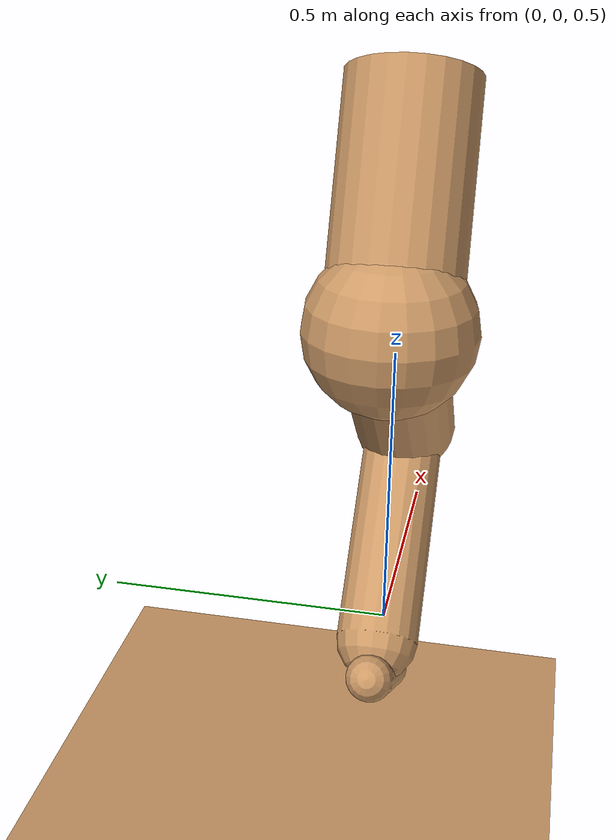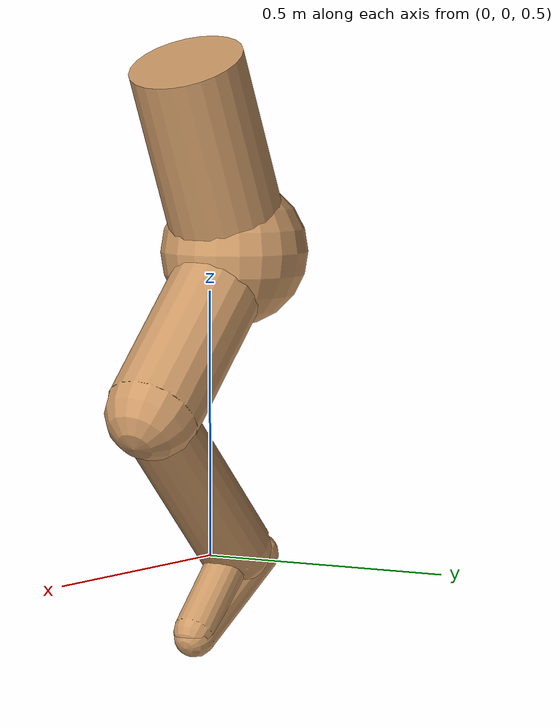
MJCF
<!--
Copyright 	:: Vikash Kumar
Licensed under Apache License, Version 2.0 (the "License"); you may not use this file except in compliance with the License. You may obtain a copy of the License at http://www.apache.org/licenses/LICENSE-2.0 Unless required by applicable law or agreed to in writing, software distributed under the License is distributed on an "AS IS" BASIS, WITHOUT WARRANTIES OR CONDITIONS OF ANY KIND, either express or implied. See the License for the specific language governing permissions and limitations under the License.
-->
<mujoco model='hopper-v1.5'>
	<compiler angle="degree" inertiafromgeom='true'/>
	<default>
		<joint limited='true' damping='.1' armature='0' />
		<geom rgba='0.8 0.6 .4 1' material="geom"/>
		<motor ctrlrange='-1 1'  ctrllimited='true'/>
	</default>

	<option timestep='0.01'/>

	<visual>
        <map fogstart="3" fogend="5" force="0.1" znear="0.1"/>
        <quality shadowsize="2048" offsamples="8"/>
        <global offwidth="800" offheight="800"/>
    </visual>

    <asset>
        <texture name="skybox" type="skybox" builtin="gradient" rgb1=".08 .09 .10" rgb2="0 0 0"
               width="800" height="800" mark="random" markrgb=".8 .8 .8"/>
        <texture name="texgeom" type="cube" builtin="flat" mark="cross" width="127" height="1278"
            rgb1="0.8 0.6 0.4" rgb2="0.8 0.6 0.4" markrgb="1 1 1" random="0.01"/>
        <texture name="texplane" type="2d" builtin="checker" rgb1=".2 .3 .4" rgb2=".1 0.15 0.2"
            width="512" height="512"/>

        <material name='MatPlane' reflectance='0.3' texture="texplane" texrepeat="1 1" texuniform="true"/>
        <material name='geom' texture="texgeom" texuniform="true"/>
    </asset>

    <worldbody>
        <geom name='floor' pos='0 0 0' size='40 1 .125' type='plane' material="MatPlane" condim='3'/>
        <light mode='targetbodycom' target='torso' directional='false' diffuse='.8 .8 .8' specular='0.3 0.3 0.3' pos='-1 -1 4.0' dir='1 1 -4'/>
        <camera name='targeting' pos='1 1 2' mode='targetbodycom' target='torso'/>

		<body name='torso' pos='0 0 1.25'>
			<joint name='slideX' type='slide' pos='0 0 0' axis='1 0 0' limited='false'  armature='0' damping='0' stiffness='0'/>
			<joint name='slideZ' type='slide' pos='0 0 0' axis='0 0 1' limited='false'  armature='0' damping='0' stiffness='0' />
			<joint name='hingeY' type='hinge' pos='0 0 0' axis='0 1 0' range='-120 120' armature='0' damping='0' stiffness='0' />
			<geom type='cylinder' size='.11 .2' pos='0 0 0' euler='0 25 0'/>
			<geom type='sphere' size='.14' pos='-.085 0 -.181' euler='0 0 0' material=''/>

			<body name='thigh' pos='-.085 0 -.181' euler='0 -45 0'>
				<joint name='thigh' type='hinge' axis='0 1 0' range='-75 75'/>
				<geom type='capsule' size='.09 .2' pos='0 0 -.2' euler='0 -.707 0'/>

				<body name='shin' pos='0 0 -.4' euler='0 90 0'>
					<joint name='shin' type='hinge' axis='0 1 0' range='-75 75'/>
					<geom type='capsule' size='.07 .2' pos='0 0 -.2' euler='0 .707 0'/>

					<body name='foot' pos='0 0 -.4' euler='0 -90	 0'>
						<joint name='foot' type='hinge' axis='0 1 0' range='-50 75'/>
						<geom type='capsule' size='.04 .1' pos='0 0 -.1'/>
						<geom type='capsule' size='.04 .13' pos='-.04 0 -.08' euler='0 -15 0'/>
					</body>

				</body>

			</body>

		</body>

	</worldbody>

    <actuator>
        <motor ctrllimited="true" ctrlrange="-1.0 1.0" gear="300.0" joint="thigh"/>
        <motor ctrllimited="true" ctrlrange="-1.0 1.0" gear="250.0" joint="shin"/>
        <motor ctrllimited="true" ctrlrange="-1.0 1.0" gear="200.0" joint="foot"/>
    </actuator>

</mujoco>
